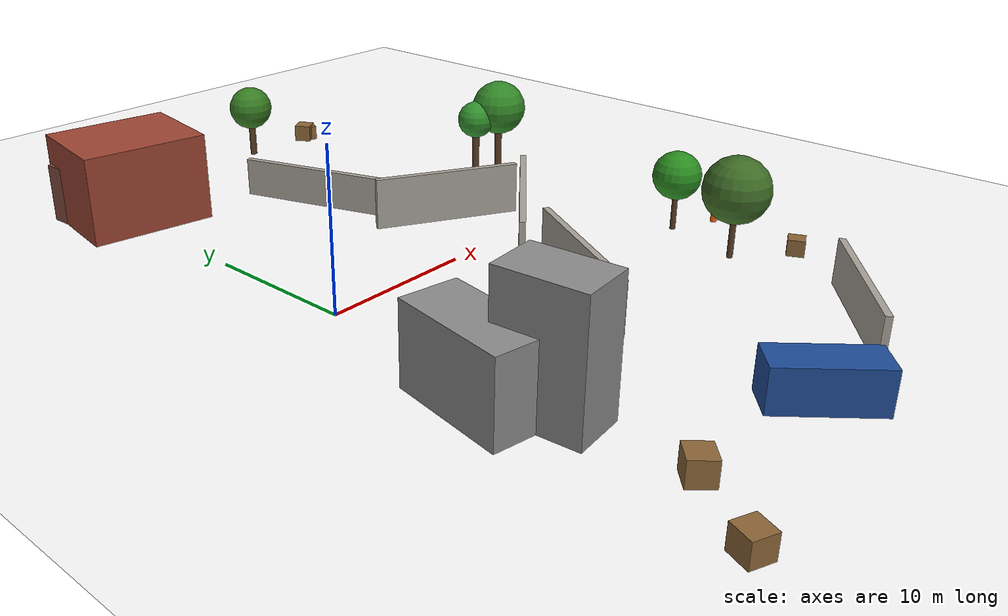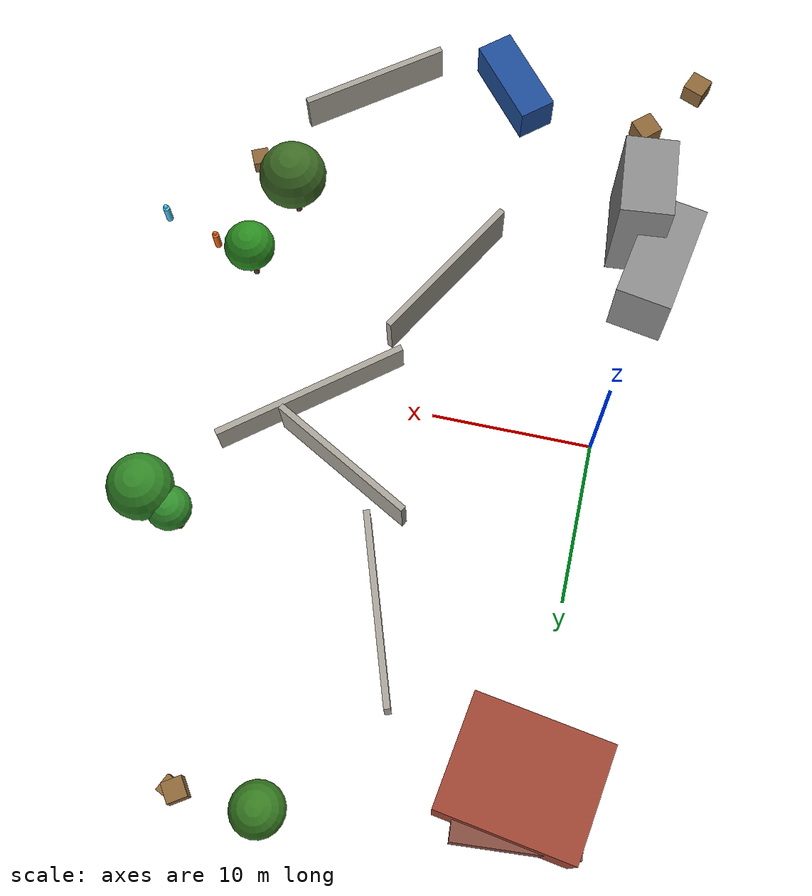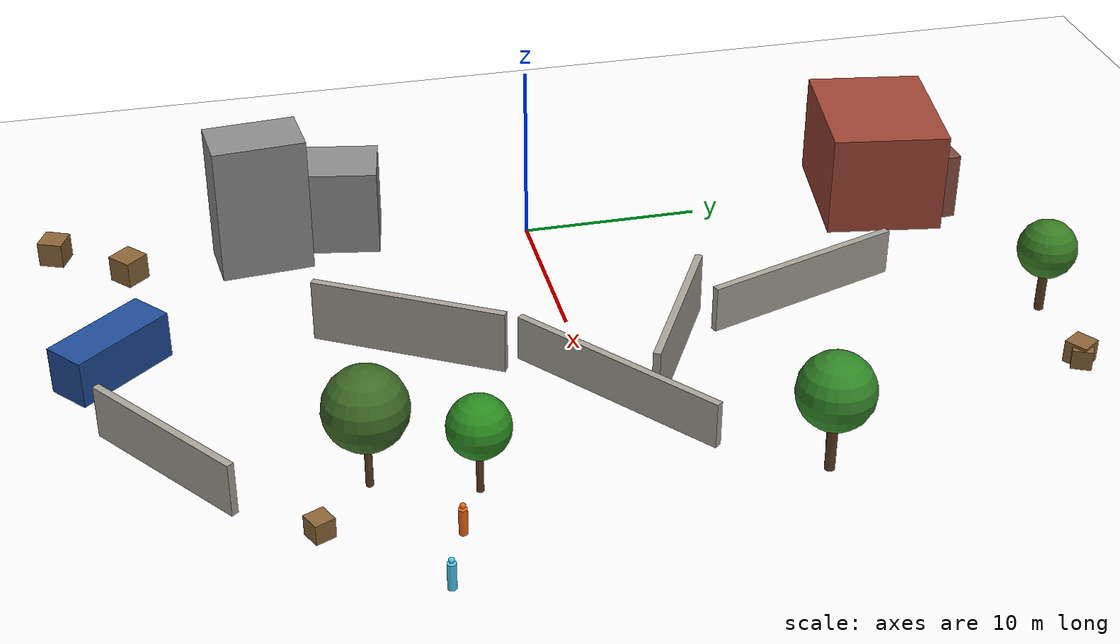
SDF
<sdf version="1.9">
 <world name="map_7">
  <model name="ground_plane">
   <static>true</static>
   <link name="link">
    <collision name="collision">
     <geometry><plane><normal>0 0 1</normal><size>1 1</size></plane></geometry>
    </collision>
   </link>
  </model>
  <include><uri>model://grass_ground</uri></include>
  <model name="building_0">
   <static>true</static>
   <pose>-1.92 -11.82 2.47 0 0 1.396</pose>
   <link name="link">
    <collision name="collision"><geometry><box><size>7.12 3.53 4.94</size></box></geometry></collision>
    <visual name="visual">
     <geometry><box><size>7.12 3.53 4.94</size></box></geometry>
     <material>
      <diffuse>0.550 0.550 0.550 1</diffuse>
      <ambient>0.440 0.440 0.440 1</ambient>
      <specular>0.05 0.05 0.05 1</specular>
     </material>
    </visual>
   </link>
  </model>
  <model name="building_3">
   <static>true</static>
   <pose>-0.19 -15.15 3.92 0 0 1.657</pose>
   <link name="link">
    <collision name="collision"><geometry><box><size>5.14 3.26 7.84</size></box></geometry></collision>
    <visual name="visual">
     <geometry><box><size>5.14 3.26 7.84</size></box></geometry>
     <material>
      <diffuse>0.550 0.550 0.550 1</diffuse>
      <ambient>0.440 0.440 0.440 1</ambient>
      <specular>0.05 0.05 0.05 1</specular>
     </material>
    </visual>
   </link>
  </model>
  <model name="building_5">
   <static>true</static>
   <pose>0.59 20.83 2.92 0 0 -0.154</pose>
   <link name="link">
    <collision name="collision"><geometry><box><size>8.12 6.62 5.85</size></box></geometry></collision>
    <visual name="visual">
     <geometry><box><size>8.12 6.62 5.85</size></box></geometry>
     <material>
      <diffuse>0.620 0.270 0.200 1</diffuse>
      <ambient>0.496 0.216 0.160 1</ambient>
      <specular>0.05 0.05 0.05 1</specular>
     </material>
    </visual>
   </link>
  </model>
  <model name="building_6">
   <static>true</static>
   <pose>0.47 22.28 1.95 0 0 0.071</pose>
   <link name="link">
    <collision name="collision"><geometry><box><size>7.18 4.60 3.90</size></box></geometry></collision>
    <visual name="visual">
     <geometry><box><size>7.18 4.60 3.90</size></box></geometry>
     <material>
      <diffuse>0.520 0.300 0.250 1</diffuse>
      <ambient>0.416 0.240 0.200 1</ambient>
      <specular>0.05 0.05 0.05 1</specular>
     </material>
    </visual>
   </link>
  </model>
  <model name="wall_0">
   <static>true</static>
   <pose>11.02 -8.68 1.74 0 0 1.045</pose>
   <link name="link">
    <collision name="collision"><geometry><box><size>10.67 0.40 3.47</size></box></geometry></collision>
    <visual name="visual">
     <geometry><box><size>10.67 0.40 3.47</size></box></geometry>
     <material>
      <diffuse>0.660 0.640 0.600 1</diffuse>
      <ambient>0.528 0.512 0.480 1</ambient>
      <specular>0.05 0.05 0.05 1</specular>
     </material>
    </visual>
   </link>
  </model>
  <model name="wall_1">
   <static>true</static>
   <pose>18.63 -21.79 1.45 0 0 0.637</pose>
   <link name="link">
    <collision name="collision"><geometry><box><size>9.77 0.40 2.90</size></box></geometry></collision>
    <visual name="visual">
     <geometry><box><size>9.77 0.40 2.90</size></box></geometry>
     <material>
      <diffuse>0.660 0.640 0.600 1</diffuse>
      <ambient>0.528 0.512 0.480 1</ambient>
      <specular>0.05 0.05 0.05 1</specular>
     </material>
    </visual>
   </link>
  </model>
  <model name="wall_2">
   <static>true</static>
   <pose>17.58 0.78 1.28 0 0 0.669</pose>
   <link name="link">
    <collision name="collision"><geometry><box><size>12.53 0.40 2.55</size></box></geometry></collision>
    <visual name="visual">
     <geometry><box><size>12.53 0.40 2.55</size></box></geometry>
     <material>
      <diffuse>0.660 0.640 0.600 1</diffuse>
      <ambient>0.528 0.512 0.480 1</ambient>
      <specular>0.05 0.05 0.05 1</specular>
     </material>
    </visual>
   </link>
  </model>
  <model name="wall_3">
   <static>true</static>
   <pose>14.57 4.84 1.71 0 0 2.639</pose>
   <link name="link">
    <collision name="collision"><geometry><box><size>9.84 0.40 3.42</size></box></geometry></collision>
    <visual name="visual">
     <geometry><box><size>9.84 0.40 3.42</size></box></geometry>
     <material>
      <diffuse>0.660 0.640 0.600 1</diffuse>
      <ambient>0.528 0.512 0.480 1</ambient>
      <specular>0.05 0.05 0.05 1</specular>
     </material>
    </visual>
   </link>
  </model>
  <model name="wall_4">
   <static>true</static>
   <pose>10.59 13.03 1.31 0 0 1.897</pose>
   <link name="link">
    <collision name="collision"><geometry><box><size>11.67 0.40 2.61</size></box></geometry></collision>
    <visual name="visual">
     <geometry><box><size>11.67 0.40 2.61</size></box></geometry>
     <material>
      <diffuse>0.660 0.640 0.600 1</diffuse>
      <ambient>0.528 0.512 0.480 1</ambient>
      <specular>0.05 0.05 0.05 1</specular>
     </material>
    </visual>
   </link>
  </model>
  <model name="container_2">
   <static>true</static>
   <pose>9.43 -23.93 1.30 0 0 2.266</pose>
   <link name="link">
    <collision name="collision"><geometry><box><size>6.00 2.40 2.60</size></box></geometry></collision>
    <visual name="visual">
     <geometry><box><size>6.00 2.40 2.60</size></box></geometry>
     <material>
      <diffuse>0.120 0.300 0.600 1</diffuse>
      <ambient>0.096 0.240 0.480 1</ambient>
      <specular>0.05 0.05 0.05 1</specular>
     </material>
    </visual>
   </link>
  </model>
  <model name="crate_0">
   <static>true</static>
   <pose>19.84 25.17 0.54 0 0 2.703</pose>
   <link name="link">
    <collision name="collision"><geometry><box><size>1.09 1.09 1.09</size></box></geometry></collision>
    <visual name="visual">
     <geometry><box><size>1.09 1.09 1.09</size></box></geometry>
     <material>
      <diffuse>0.550 0.400 0.220 1</diffuse>
      <ambient>0.440 0.320 0.176 1</ambient>
      <specular>0.05 0.05 0.05 1</specular>
     </material>
    </visual>
   </link>
  </model>
  <model name="crate_1">
   <static>true</static>
   <pose>19.52 25.23 0.62 0 0 0.577</pose>
   <link name="link">
    <collision name="collision"><geometry><box><size>1.24 1.24 1.24</size></box></geometry></collision>
    <visual name="visual">
     <geometry><box><size>1.24 1.24 1.24</size></box></geometry>
     <material>
      <diffuse>0.550 0.400 0.220 1</diffuse>
      <ambient>0.440 0.320 0.176 1</ambient>
      <specular>0.05 0.05 0.05 1</specular>
     </material>
    </visual>
   </link>
  </model>
  <model name="crate_6">
   <static>true</static>
   <pose>-2.70 -26.59 0.70 0 0 2.744</pose>
   <link name="link">
    <collision name="collision"><geometry><box><size>1.40 1.40 1.40</size></box></geometry></collision>
    <visual name="visual">
     <geometry><box><size>1.40 1.40 1.40</size></box></geometry>
     <material>
      <diffuse>0.550 0.400 0.220 1</diffuse>
      <ambient>0.440 0.320 0.176 1</ambient>
      <specular>0.05 0.05 0.05 1</specular>
     </material>
    </visual>
   </link>
  </model>
  <model name="crate_7">
   <static>true</static>
   <pose>24.98 -15.21 0.54 0 0 0.428</pose>
   <link name="link">
    <collision name="collision"><geometry><box><size>1.09 1.09 1.09</size></box></geometry></collision>
    <visual name="visual">
     <geometry><box><size>1.09 1.09 1.09</size></box></geometry>
     <material>
      <diffuse>0.550 0.400 0.220 1</diffuse>
      <ambient>0.440 0.320 0.176 1</ambient>
      <specular>0.05 0.05 0.05 1</specular>
     </material>
    </visual>
   </link>
  </model>
  <model name="crate_9">
   <static>true</static>
   <pose>0.20 -22.61 0.74 0 0 0.725</pose>
   <link name="link">
    <collision name="collision"><geometry><box><size>1.47 1.47 1.47</size></box></geometry></collision>
    <visual name="visual">
     <geometry><box><size>1.47 1.47 1.47</size></box></geometry>
     <material>
      <diffuse>0.550 0.400 0.220 1</diffuse>
      <ambient>0.440 0.320 0.176 1</ambient>
      <specular>0.05 0.05 0.05 1</specular>
     </material>
    </visual>
   </link>
  </model>
  <model name="tree_1">
   <static>true</static>
   <pose>23.34 -7.37 0 0 0 0</pose>
   <link name="link">
    <collision name="trunk">
     <pose>0 0 1.31 0 0 0</pose>
     <geometry><cylinder><radius>0.18</radius><length>2.63</length></cylinder></geometry>
    </collision>
    <visual name="trunk">
     <pose>0 0 1.31 0 0 0</pose>
     <geometry><cylinder><radius>0.18</radius><length>2.63</length></cylinder></geometry>
     <material>
      <diffuse>0.360 0.240 0.140 1</diffuse>
      <ambient>0.288 0.192 0.112 1</ambient>
      <specular>0.05 0.05 0.05 1</specular>
     </material>
    </visual>
    <collision name="canopy">
     <pose>0 0 3.74 0 0 0</pose>
     <geometry><sphere><radius>1.59</radius></sphere></geometry>
    </collision>
    <visual name="canopy">
     <pose>0 0 3.74 0 0 0</pose>
     <geometry><sphere><radius>1.59</radius></sphere></geometry>
     <material>
      <diffuse>0.168 0.552 0.127 1</diffuse>
      <ambient>0.134 0.442 0.102 1</ambient>
      <specular>0.05 0.05 0.05 1</specular>
     </material>
    </visual>
   </link>
  </model>
  <model name="tree_4">
   <static>true</static>
   <pose>25.39 9.38 0 0 0 0</pose>
   <link name="link">
    <collision name="trunk">
     <pose>0 0 1.57 0 0 0</pose>
     <geometry><cylinder><radius>0.26</radius><length>3.14</length></cylinder></geometry>
    </collision>
    <visual name="trunk">
     <pose>0 0 1.57 0 0 0</pose>
     <geometry><cylinder><radius>0.26</radius><length>3.14</length></cylinder></geometry>
     <material>
      <diffuse>0.360 0.240 0.140 1</diffuse>
      <ambient>0.288 0.192 0.112 1</ambient>
      <specular>0.05 0.05 0.05 1</specular>
     </material>
    </visual>
    <collision name="canopy">
     <pose>0 0 4.53 0 0 0</pose>
     <geometry><sphere><radius>1.98</radius></sphere></geometry>
    </collision>
    <visual name="canopy">
     <pose>0 0 4.53 0 0 0</pose>
     <geometry><sphere><radius>1.98</radius></sphere></geometry>
     <material>
      <diffuse>0.195 0.529 0.152 1</diffuse>
      <ambient>0.156 0.424 0.122 1</ambient>
      <specular>0.05 0.05 0.05 1</specular>
     </material>
    </visual>
   </link>
  </model>
  <model name="tree_5">
   <static>true</static>
   <pose>23.61 10.10 0 0 0 0</pose>
   <link name="link">
    <collision name="trunk">
     <pose>0 0 1.45 0 0 0</pose>
     <geometry><cylinder><radius>0.26</radius><length>2.90</length></cylinder></geometry>
    </collision>
    <visual name="trunk">
     <pose>0 0 1.45 0 0 0</pose>
     <geometry><cylinder><radius>0.26</radius><length>2.90</length></cylinder></geometry>
     <material>
      <diffuse>0.360 0.240 0.140 1</diffuse>
      <ambient>0.288 0.192 0.112 1</ambient>
      <specular>0.05 0.05 0.05 1</specular>
     </material>
    </visual>
    <collision name="canopy">
     <pose>0 0 3.85 0 0 0</pose>
     <geometry><sphere><radius>1.35</radius></sphere></geometry>
    </collision>
    <visual name="canopy">
     <pose>0 0 3.85 0 0 0</pose>
     <geometry><sphere><radius>1.35</radius></sphere></geometry>
     <material>
      <diffuse>0.197 0.561 0.175 1</diffuse>
      <ambient>0.157 0.448 0.140 1</ambient>
      <specular>0.05 0.05 0.05 1</specular>
     </material>
    </visual>
   </link>
  </model>
  <model name="tree_9">
   <static>true</static>
   <pose>21.74 -12.42 0 0 0 0</pose>
   <link name="link">
    <collision name="trunk">
     <pose>0 0 1.49 0 0 0</pose>
     <geometry><cylinder><radius>0.19</radius><length>2.98</length></cylinder></geometry>
    </collision>
    <visual name="trunk">
     <pose>0 0 1.49 0 0 0</pose>
     <geometry><cylinder><radius>0.19</radius><length>2.98</length></cylinder></geometry>
     <material>
      <diffuse>0.360 0.240 0.140 1</diffuse>
      <ambient>0.288 0.192 0.112 1</ambient>
      <specular>0.05 0.05 0.05 1</specular>
     </material>
    </visual>
    <collision name="canopy">
     <pose>0 0 4.47 0 0 0</pose>
     <geometry><sphere><radius>2.13</radius></sphere></geometry>
    </collision>
    <visual name="canopy">
     <pose>0 0 4.47 0 0 0</pose>
     <geometry><sphere><radius>2.13</radius></sphere></geometry>
     <material>
      <diffuse>0.240 0.420 0.145 1</diffuse>
      <ambient>0.192 0.336 0.116 1</ambient>
      <specular>0.05 0.05 0.05 1</specular>
     </material>
    </visual>
   </link>
  </model>
  <model name="tree_12">
   <static>true</static>
   <pose>14.33 25.35 0 0 0 0</pose>
   <link name="link">
    <collision name="trunk">
     <pose>0 0 1.31 0 0 0</pose>
     <geometry><cylinder><radius>0.25</radius><length>2.63</length></cylinder></geometry>
    </collision>
    <visual name="trunk">
     <pose>0 0 1.31 0 0 0</pose>
     <geometry><cylinder><radius>0.25</radius><length>2.63</length></cylinder></geometry>
     <material>
      <diffuse>0.360 0.240 0.140 1</diffuse>
      <ambient>0.288 0.192 0.112 1</ambient>
      <specular>0.05 0.05 0.05 1</specular>
     </material>
    </visual>
    <collision name="canopy">
     <pose>0 0 3.75 0 0 0</pose>
     <geometry><sphere><radius>1.60</radius></sphere></geometry>
    </collision>
    <visual name="canopy">
     <pose>0 0 3.75 0 0 0</pose>
     <geometry><sphere><radius>1.60</radius></sphere></geometry>
     <material>
      <diffuse>0.217 0.488 0.134 1</diffuse>
      <ambient>0.174 0.390 0.107 1</ambient>
      <specular>0.05 0.05 0.05 1</specular>
     </material>
    </visual>
   </link>
  </model>
  <model name="entity_1">
   <static>true</static>
   <pose>26.30 -8.75 0 0 0 0</pose>
   <link name="link">
    <visual name="body">
     <pose>0 0 0.72 0 0 0</pose>
     <geometry><cylinder><radius>0.22</radius><length>1.44</length></cylinder></geometry>
     <material>
      <diffuse>0.950 0.400 0.100 1</diffuse>
      <ambient>0.760 0.320 0.080 1</ambient>
      <specular>0.05 0.05 0.05 1</specular>
     </material>
    </visual>
    <visual name="head">
     <pose>0 0 1.6 0 0 0</pose>
     <geometry><sphere><radius>0.15</radius></sphere></geometry>
     <material>
      <diffuse>0.950 0.400 0.100 1</diffuse>
      <ambient>0.760 0.320 0.080 1</ambient>
      <specular>0.05 0.05 0.05 1</specular>
     </material>
    </visual>
   </link>
  </model>
  <model name="entity_4">
   <static>true</static>
   <pose>29.96 -9.96 0 0 0 0</pose>
   <link name="link">
    <visual name="body">
     <pose>0 0 0.72 0 0 0</pose>
     <geometry><cylinder><radius>0.22</radius><length>1.44</length></cylinder></geometry>
     <material>
      <diffuse>0.300 0.800 0.950 1</diffuse>
      <ambient>0.240 0.640 0.760 1</ambient>
      <specular>0.05 0.05 0.05 1</specular>
     </material>
    </visual>
    <visual name="head">
     <pose>0 0 1.6 0 0 0</pose>
     <geometry><sphere><radius>0.15</radius></sphere></geometry>
     <material>
      <diffuse>0.300 0.800 0.950 1</diffuse>
      <ambient>0.240 0.640 0.760 1</ambient>
      <specular>0.05 0.05 0.05 1</specular>
     </material>
    </visual>
   </link>
  </model>
  <model name="device">
   <static>true</static>
   <link name="link">
    <visual name="post">
     <pose>0 0 0.78 0 0 0</pose>
     <geometry><cylinder><radius>0.02</radius><length>1.56</length></cylinder></geometry>
     <material>
      <diffuse>0.150 0.150 0.150 1</diffuse>
      <ambient>0.120 0.120 0.120 1</ambient>
      <specular>0.05 0.05 0.05 1</specular>
     </material>
    </visual>
    <visual name="body">
     <pose>-0.03 0 1.6 0 0 0</pose>
     <geometry><box><size>0.06 0.18 0.12</size></box></geometry>
     <material>
      <diffuse>0.100 0.300 0.800 1</diffuse>
      <ambient>0.080 0.240 0.640 1</ambient>
      <specular>0.05 0.05 0.05 1</specular>
     </material>
    </visual>
    <sensor name="camera" type="camera">
     <pose>0 0 1.6 0 0 0</pose>
     <always_on>1</always_on>
     <update_rate>30</update_rate>
     <visualize>false</visualize>
     <topic>device/camera/image</topic>
     <camera>
      <horizontal_fov>1.3090</horizontal_fov>
      <image><width>960</width><height>720</height><format>R8G8B8</format></image>
      <clip><near>0.1</near><far>200</far></clip>
     </camera>
    </sensor>
   </link>
  </model>
 </world>
</sdf>
